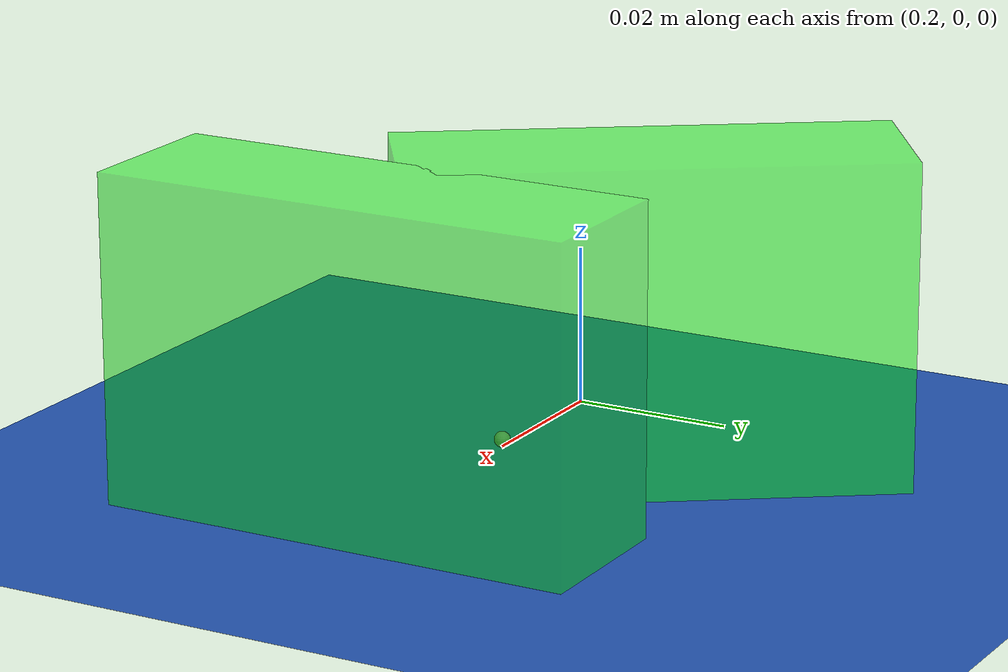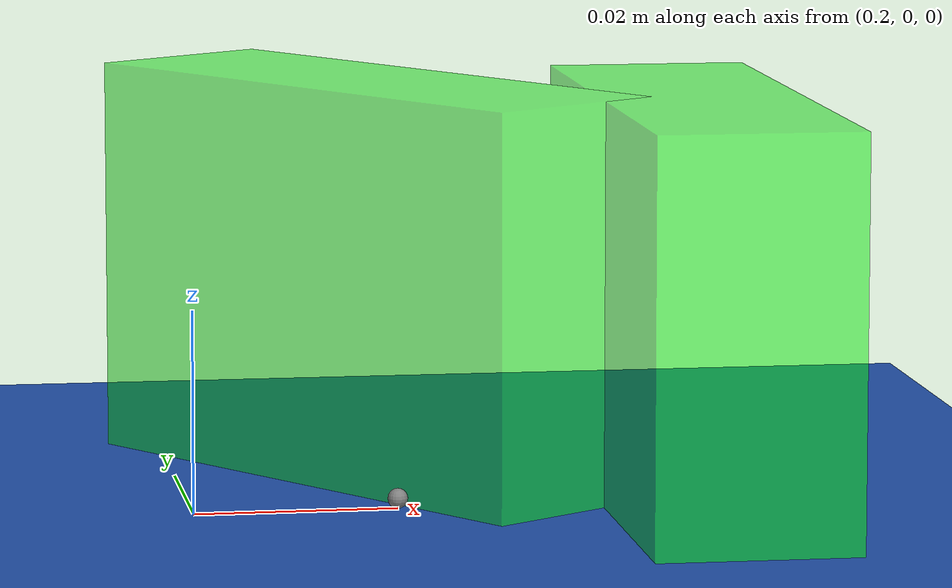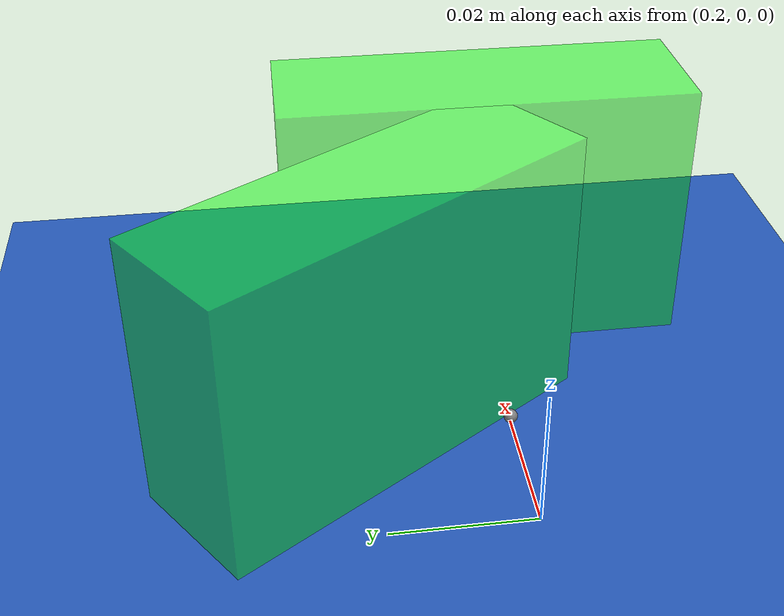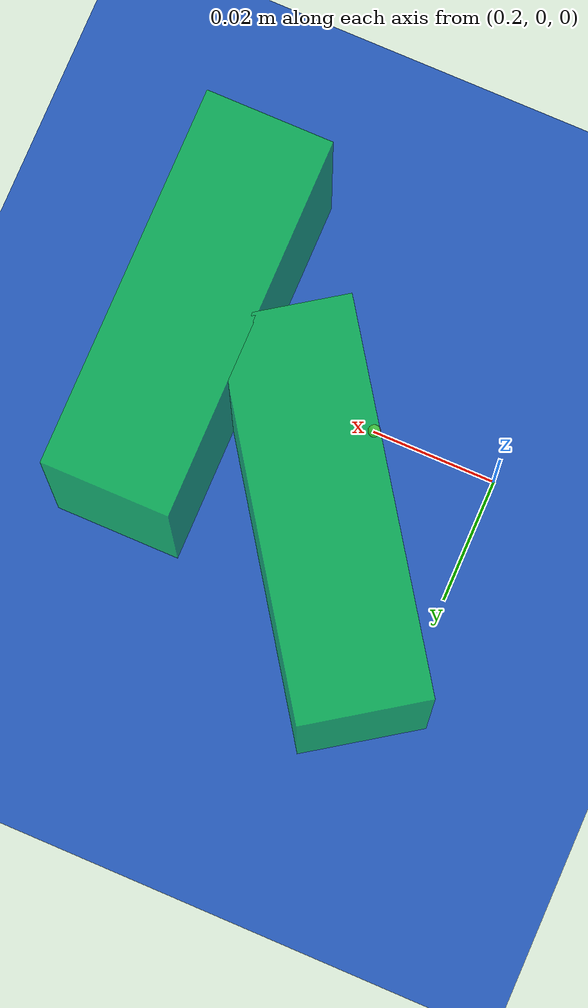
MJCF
<mujoco model="Point Push Control">
  <include file="../common.xml"/>
  <!-- modified from: https://github.com/google-deepmind/dm_control/blob/main/dm_control/suite/point_mass.xml -->
  <include file="point_push.xml" />

  <custom>
    <!-- agent -->
    <numeric name="agent_planner" data="2" />
    <numeric name="agent_horizon" data="10" />
    <numeric name="agent_timestep" data="0.01" />
    <numeric name="agent_integrator" data="2" />
    <numeric name="agent_policy_width" data="0.0015" />
    <numeric name="sampling_spline_points" data="15" />
    <numeric name="sampling_exploration" data="0.05" />
    <numeric name="gradient_spline_points" data="15" />

    <!-- estimator -->
    <numeric name="estimator" data="0" />
    <numeric name="estimator_sensor_start" data="2" />
    <numeric name="estimator_number_sensor" data="8" />
    <numeric name="estimator_timestep" data="0.0075" />
    <numeric name="batch_configuration_length" data="3" />
    <numeric name="batch_scale_prior" data="1.0e-3" />
  </custom>

  <worldbody>
  <!-- when the goal is on the left of the object (when the point needs to relocate on the left,
       the MPC seems to fail. It only is able to track the orientation in this case) -->
    <body name="goal" mocap="true" pos="0.22 0.02 0.02" quat="0.9553365 0 0 0.2955202">
        <geom type="box" size="0.01 0.03 0.02" contype="0" conaffinity="0" rgba="0 1 0 .5"/>
    </body>

  </worldbody>

  <sensor>
    <user name="Velocity" dim="3" user="0 0.1 0.0 1.0" />
    <user name="Position" dim="3" user="2 0.1 0.0 1.0 0.04" />
    <user name="Orientation" dim="3" user="0 0.1 0 10" />
    <framepos name="obj_position" objtype="body" objname="object"/>
    <framequat name="obj_orientation" objtype="body" objname="object"/>
    <framepos name="goal_position" objtype="body" objname="goal"/>
    <framequat name="goal_orientation" objtype="body" objname="goal"/>
  </sensor>

</mujoco>

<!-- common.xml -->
<mujoco>

    <visual>
        <headlight ambient=".4 .4 .4" diffuse=".8 .8 .8" specular="0.1 0.1 0.1"/>
        <map znear=".01"/>
        <quality shadowsize="2048"/>
        <global elevation="-15"/>
    </visual>

    <asset>
        <texture name="blue_grid" type="2d" builtin="checker" rgb1=".02 .14 .44" rgb2=".27 .55 1" width="300" height="300" mark="edge" markrgb="1 1 1"/>
        <material name="blue_grid" texture="blue_grid" texrepeat="1 1" texuniform="true" reflectance=".2"/>

        <texture name="grey_grid" type="2d" builtin="checker" rgb1=".26 .26 .26" rgb2=".6 .6 .6" width="300" height="300" mark="edge" markrgb="1 1 1"/>
        <material name="grey_grid" texture="grey_grid" texrepeat="1 1" texuniform="true" reflectance=".2"/>
        <texture name="skybox" type="skybox" builtin="gradient" rgb1=".66 .79 1" rgb2=".9 .91 .93" width="800" height="800"/>

        <material name="self" rgba=".7 .5 .3 1"/>
        <material name="self_default" rgba=".7 .5 .3 1"/>
        <material name="self_highlight" rgba="0 .5 .3 1"/>
        <material name="effector" rgba=".7 .4 .2 1"/>
        <material name="effector_default" rgba=".7 .4 .2 1"/>
        <material name="effector_highlight" rgba="0 .5 .3 1"/>
        <material name="decoration" rgba=".2 .6 .3 1"/>
        <material name="eye" rgba="0 .2 1 1"/>
        <material name="target" rgba=".6 .3 .3 1"/>
        <material name="target_default" rgba=".6 .3 .3 1"/>
        <material name="target_highlight" rgba=".6 .3 .3 .4"/>
        <material name="site" rgba=".5 .5 .5 .3"/>
    </asset>

    <size memory="1M"/>

    <statistic extent="0.4" center="0.3 0.1 0"/>

    <visual>
        <quality shadowsize="8192"/>
        <global azimuth="180" elevation="-30"/>
    </visual>

    <default>
        <geom friction="1.0"/>
    </default>

    <compiler angle="radian" autolimits="true"/>

    <asset>
        <mesh name="apple" file="../../shared_assets/apple/apple.obj" />
        <mesh name="apple_contact0" file="../../shared_assets/apple/contact0.stl"  />
        <mesh name="apple_contact1" file="../../shared_assets/apple/contact1.stl"  />

        <mesh name="doorknob" file="../../shared_assets/doorknob/doorknob.obj" />

        <mesh name="flashlight" file="../../shared_assets/flashlight/flashlight.obj" />
        <mesh name="flashlight_contact0" file="../../shared_assets/flashlight/contact0.stl"  />
        <mesh name="flashlight_contact1" file="../../shared_assets/flashlight/contact1.stl"  />

        <mesh name="hammer" file="../../shared_assets/hammer/hammer.obj" />
        <mesh name="hammer_contact0" file="../../shared_assets/hammer/contact0.stl"  />
        <mesh name="hammer_contact1" file="../../shared_assets/hammer/contact1.stl"  />

        <mesh name="phone" file="../../shared_assets/phone/phone.obj" />
        <mesh name="phone_contact0" file="../../shared_assets/phone/contact0.stl"  />
        <mesh name="phone_contact1" file="../../shared_assets/phone/contact1.stl"  />
        <mesh name="phone_contact2" file="../../shared_assets/phone/contact2.stl"  />

        <mesh name="stapler" file="../../shared_assets/stapler/stapler.obj" />
        <mesh name="stapler_contact0" file="../../shared_assets/stapler/contact0.stl"  />
        <mesh name="stapler_contact1" file="../../shared_assets/stapler/contact1.stl"  />
        <mesh name="stapler_contact2" file="../../shared_assets/stapler/contact2.stl"  />
        <mesh name="stapler_contact3" file="../../shared_assets/stapler/contact3.stl"  />
        <mesh name="stapler_contact4" file="../../shared_assets/stapler/contact4.stl"  />

        <mesh name="waterbottle" file="../../shared_assets/waterbottle/waterbottle.obj" />
        <mesh name="waterbottle_contact0" file="../../shared_assets/waterbottle/contact0.stl"  />
        <mesh name="waterbottle_contact1" file="../../shared_assets/waterbottle/contact1.stl"  />
    </asset>

</mujoco>

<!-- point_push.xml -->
<mujoco model="Particle">

  <asset>
    <mesh file="/home/yinglong/Documents/research/task_motion_planning/infrastructure/motoman_ws/src/pracsys_vbnpm/data/models/objects/ocrtoc/cracker_box/collision_meshes/collision/collision.obj" name="cracker_box_col" scale="1 1 1"/>
    <mesh file="/home/yinglong/Documents/research/task_motion_planning/infrastructure/motoman_ws/src/pracsys_vbnpm/data/models/objects/ocrtoc/cracker_box/meshes/visual/visual.obj" name="cracker_box_vis" scale="1 1 1"/>
    <texture file="/home/yinglong/Documents/research/task_motion_planning/infrastructure/motoman_ws/src/pracsys_vbnpm/data/models/objects/ocrtoc/cracker_box/meshes/visual/texture_map.png" name="cracker_box_vis" type="2d"/>
    <material name="cracker_box_vis" texture="cracker_box_vis"/>
  </asset>

  <worldbody>
    <light name="light" pos="0 0 1"/>
    <camera name="fixed" pos="0 0 .75" quat="1 0 0 0"/>
    <geom name="ground" type="plane" pos="0 0 0" size="2 2 .1" material="blue_grid"/>

    <body name="object" pos="0.25 0 0.02" quat="1 0 0 0">
        <geom type="box" size="0.01 0.03 0.02" rgba="0 1 0 .5"/>
        <joint name="object_jnt" type="free"/>
    </body>

    <body name="pointmass" pos="0.22 0 .001" gravcomp="1">
      <camera name="cam0" pos="0 -0.3 0.3" xyaxes="1 0 0 0 0.7 0.7"/>
      <joint name="root_x" type="slide"  pos="0 0 0" axis="1 0 0" />
      <joint name="root_y" type="slide"  pos="0 0 0" axis="0 1 0" />
      <joint name="root_z" type="slide"  pos="0 0 0" axis="0 0 1" />
      <geom name="pointmass" type="sphere" size=".001" mass="0.05"/>
      <site name="tip" pos="0 0 0" size="0.001"/>
    </body>
  </worldbody>

  <actuator>
    <velocity name="x_vel" joint="root_x" kv="10" ctrllimited="true" ctrlrange="-0.1 0.1"/>
    <velocity name="y_vel" joint="root_y" kv="10" ctrllimited="true" ctrlrange="-0.1 0.1"/>
    <velocity name="z_vel" joint="root_z" kv="10" ctrllimited="true" ctrlrange="-0.1 0.1"/>

  </actuator>
</mujoco>
